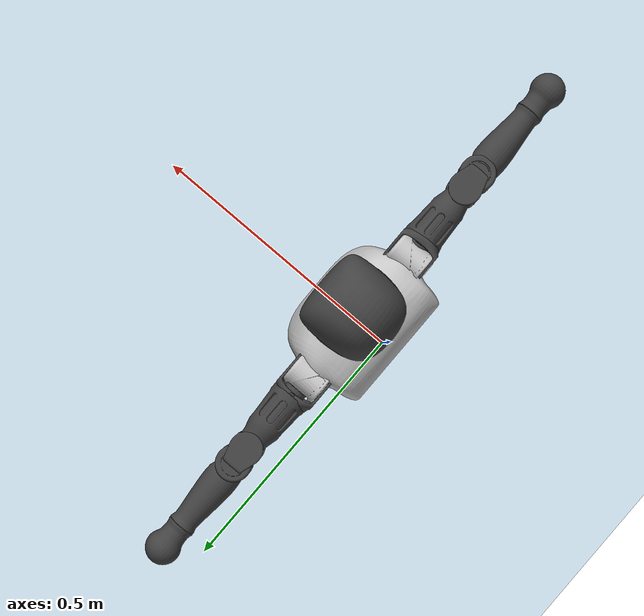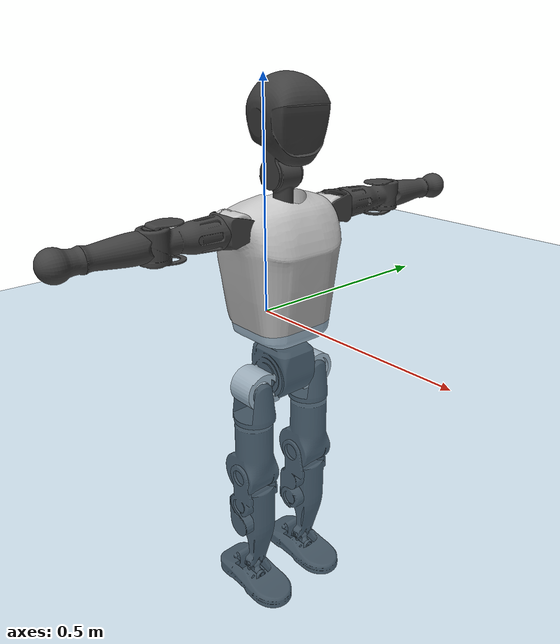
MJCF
<mujoco model="T1">
  <compiler angle="radian" assetdir="assets" balanceinertia="true" inertiafromgeom="false"/>

  <option timestep="0.005" density="1.2" viscosity="2e-05"/>

  <size nkey="1"/>

  <visual>
    <quality shadowsize="8192"/>
    <map shadowclip="0.5"/>
  </visual>

  <default>
    <default class="/">
      <joint armature="0.01" damping="0.01" frictionloss="0.1"/>
      <geom contype="0" conaffinity="0" group="1" solref="-1000 -80"/>
      <site size="0.01 0.005 0.005" group="5"/>
      <general forcelimited="true" biastype="affine" gainprm="25" biasprm="0 -25 -0.6"/>
      <default class="t1">
        <geom rgba="0.25 0.25 0.25 1"/>
        <default class="visual">
          <geom type="mesh" group="2"/>
        </default>
        <default class="collision">
          <geom group="3"/>
        </default>
        <default class="foot">
          <geom size="0.1115 0.05 0.015" type="box" condim="6" group="4" priority="1" solimp="0.015 1 0.015"/>
        </default>
        <default class="reward_collision_sphere">
          <geom group="5" rgba="1 0 0 1"/>
        </default>
      </default>
    </default>
  </default>

  <asset>
    <texture type="skybox" colorspace="auto" name="//unnamed_texture_0" builtin="gradient" rgb1="0.95 0.95 0.95" rgb2="0.95 0.95 0.95" width="100" height="600"/>
    <texture type="2d" colorspace="auto" name="texplane" builtin="checker" rgb1="0.345 0.575 0.748" rgb2="0.345 0.575 0.748" markrgb="1 1 1" width="512" height="512"/>
    <material name="MatPlane" class="/" texture="texplane" texuniform="true" texrepeat="2 2" specular="0.9"/>
    <mesh name="Trunk" class="/" file="Trunk.stl"/>
    <mesh name="H1" class="/" file="H1.stl"/>
    <mesh name="H2" class="/" file="H2.stl"/>
    <mesh name="AL1" class="/" file="AL1.stl"/>
    <mesh name="AL2" class="/" file="AL2.stl"/>
    <mesh name="AL3" class="/" file="AL3.stl"/>
    <mesh name="left_hand_link" class="/" file="left_hand_link.stl"/>
    <mesh name="AR1" class="/" file="AR1.stl"/>
    <mesh name="AR2" class="/" file="AR2.stl"/>
    <mesh name="AR3" class="/" file="AR3.stl"/>
    <mesh name="right_hand_link" class="/" file="right_hand_link.stl"/>
    <mesh name="Waist" class="/" file="Waist.stl"/>
    <mesh name="Hip_Pitch_Left" class="/" file="Hip_Pitch_Left.stl"/>
    <mesh name="Hip_Roll_Left" class="/" file="Hip_Roll_Left.stl"/>
    <mesh name="Hip_Yaw_Left" class="/" file="Hip_Yaw_Left.stl"/>
    <mesh name="Shank_Left" class="/" file="Shank_Left.stl"/>
    <mesh name="Ankle_Cross_Left" class="/" file="Ankle_Cross_Left.stl"/>
    <mesh name="left_foot_link" class="/" file="left_foot_link.stl"/>
    <mesh name="Hip_Pitch_Right" class="/" file="Hip_Pitch_Right.stl"/>
    <mesh name="Hip_Roll_Right" class="/" file="Hip_Roll_Right.stl"/>
    <mesh name="Hip_Yaw_Right" class="/" file="Hip_Yaw_Right.stl"/>
    <mesh name="Shank_Right" class="/" file="Shank_Right.stl"/>
    <mesh name="Ankle_Cross_Right" class="/" file="Ankle_Cross_Right.stl"/>
    <mesh name="right_foot_link" class="/" file="right_foot_link.stl"/>
  </asset>

  <worldbody>
    <geom name="floor" class="/" size="100 100 0.125" type="plane" group="0" material="MatPlane"/>
    <light name="toplight_shadow" class="/" pos="0 0 5" dir="0.0990148 0.0990148 -0.990148" type="directional" ambient="0.04 0.04 0.04" diffuse="0.55 0.55 0.55" specular="0.12 0.12 0.12"/>
    <light name="toplight_fill" class="/" pos="0 0 5" dir="0.0990148 0.0990148 -0.990148" type="directional" castshadow="false" ambient="0.04 0.04 0.04" diffuse="0.3 0.3 0.3" specular="0.08 0.08 0.08"/>
    <body name="trunk" childclass="t1" pos="8.99726e-05 -0.0027255 -0.0010376" quat="0.999999 -0.00118254 -5.70457e-05 0.000571022">
      <inertial pos="0.0548757 -0.00262313 0.109843" quat="0.999864 0.00434482 -0.00994009 -0.0123933" mass="9.90609" diaginertia="0.105162 0.021828 0.0699284"/>
      <joint name="//unnamed_joint_0" type="free" armature="0" damping="0" frictionloss="0"/>
      <geom name="//unnamed_geom_1" class="visual" rgba="0.76 0.76 0.76 1" mesh="Trunk"/>
      <geom name="//unnamed_geom_2" class="collision" size="0.071198 0.0949307 0.142396" pos="0.0614066 0 0.125371" type="box"/>
      <geom name="//unnamed_geom_3" class="reward_collision_sphere" size="0.10917" pos="0.0614066 0 0.104476"/>
      <geom name="//unnamed_geom_4" class="reward_collision_sphere" size="0.0142396" pos="0.0614066 0.0662762 0"/>
      <geom name="//unnamed_geom_5" class="reward_collision_sphere" size="0.0142396" pos="0.0614066 -0.0662762 0"/>
      <geom name="//unnamed_geom_6" class="reward_collision_sphere" size="0.0142396" pos="0.0614066 0.08343 0.188057"/>
      <geom name="//unnamed_geom_7" class="reward_collision_sphere" size="0.0142396" pos="0.0614066 -0.08343 0.188057"/>
      <site name="imu" pos="0.0135343 0.000390851 -0.0136739" size="0.00949307"/>
      <camera name="track" pos="0 -1.55944 0" quat="0.707107 0.707107 0 0" mode="trackcom"/>
      <camera name="ego_camera" pos="0.12486 0 0.438799" quat="-0.5 -0.5 0.5 0.5"/>
      <body name="H1" pos="0.060963 -0.000794395 0.252562" quat="1 0.0002638 4.19867e-05 0.000173363">
        <inertial pos="-0.00125062 -0.000498985 0.0599079" quat="0.763662 -0.0128976 0.00134761 0.645486" mass="0.379826" diaginertia="0.000264224 6.62188e-05 0.000186071"/>
        <joint name="AAHead_yaw" pos="0 0 0" axis="0.000165365 -0.000585583 1" stiffness="0.00851419" range="-1.51401 1.55272" armature="0.0101805" damping="0.00511257" frictionloss="0.103184"/>
        <geom name="//unnamed_geom_8" class="visual" mesh="H1"/>
        <body name="H2" pos="-0.00365716 -0.000329838 0.0634606" quat="0.999999 -0.000587606 -0.000724873 -0.000739559">
          <inertial pos="0.00967976 -0.00162978 0.10225" quat="0.989062 0.100348 -0.0816108 -0.0708985" mass="0.549644" diaginertia="0.00223473 0.000542428 0.00212951"/>
          <joint name="Head_pitch" pos="0 0 0" axis="-0.000553019 -0.999969 0.00789288" stiffness="0.000609278" range="-1.23483 0.333574" armature="0.0109179" damping="0" frictionloss="0.0922695"/>
          <geom name="//unnamed_geom_9" class="visual" mesh="H2"/>
          <geom name="//unnamed_geom_10" class="collision" size="0.0759446" pos="0.0102344 0 0.114923"/>
          <geom name="//unnamed_geom_11" class="reward_collision_sphere" size="0.0854377" pos="0.0204689 0 0.104476"/>
        </body>
      </body>
      <body name="AL1" pos="0.0604283 0.0820812 0.227422" quat="1 -0.000415075 0.000620569 -0.000409184">
        <inertial pos="-0.00393849 0.0339174 0.000865573" quat="0.503073 0.495537 -0.505078 0.496243" mass="0.436742" diaginertia="0.00148248 0.000354895 0.000342352"/>
        <joint name="Left_Shoulder_Pitch" pos="0 0 0" axis="0.00260307 0.999876 -0.0155326" range="-3.36074 1.24448" armature="0.0095576" damping="0.00079183" frictionloss="0.107974"/>
        <geom name="//unnamed_geom_12" class="visual" rgba="0.76 0.76 0.76 1" mesh="AL1"/>
        <body name="AL2" pos="-0.000775789 0.0401112 0.00164741" quat="1 0.000129896 1.32046e-05 0.000168336">
          <inertial pos="0.00172963 0.0312194 -0.00288441" quat="0.488873 0.511383 -0.48813 0.511097" mass="0.143401" diaginertia="0.000461971 0.000103671 0.000219697"/>
          <joint name="Left_Shoulder_Roll" pos="0 0 0" axis="-1 0.000774907 0.000170693" range="-1.52017 1.72571" armature="0.0101217" damping="0.000608879" frictionloss="0.0938497"/>
          <geom name="//unnamed_geom_13" class="visual" mesh="AL2"/>
          <body name="AL3" pos="0.00271049 0.0475752 0.00322943" quat="1 0.000103856 0.000248459 0.000214799">
            <inertial pos="0.00162987 0.065136 0.00156898" quat="0.700573 0.713489 0.00721641 -0.00887855" mass="0.828841" diaginertia="0.0143861 0.00353346 0.000724402"/>
            <joint name="Left_Elbow_Pitch" pos="0 0 0" axis="0.0137305 -0.999899 -0.00355844" range="-2.2934 2.22181" armature="0.00951959" damping="0.0108469" frictionloss="0.0986464"/>
            <geom name="//unnamed_geom_14" class="visual" mesh="AL3"/>
            <geom name="//unnamed_geom_15" class="collision" size="0.0284792 0.071198" pos="0 0.038986 0" quat="0.707105 0.707108 0 0" type="cylinder"/>
            <geom name="//unnamed_geom_16" class="reward_collision_sphere" size="0.0341751"/>
            <body name="left_hand_link" pos="-0.000366569 0.115259 -0.0020017" quat="1 0.000181948 -0.000163049 -0.000522496">
              <inertial pos="-0.00114164 0.0880614 -0.000364448" quat="0.706996 0.707203 -0.00270001 -0.00366917" mass="0.279897" diaginertia="0.0089513 0.0024151 0.000273964"/>
              <joint name="Left_Elbow_Yaw" pos="0 0 0" axis="-0.00169733 -0.000942736 0.999998" range="-2.43123 -0.0134664" armature="0.00970992" damping="0.0247648" frictionloss="0.0932735"/>
              <geom name="//unnamed_geom_17" class="visual" mesh="left_hand_link"/>
              <geom name="//unnamed_geom_18" class="collision" size="0.0284792 0.0830644" pos="0 0.101364 0" quat="0.707105 0.707108 0 0" type="cylinder"/>
              <geom name="//unnamed_geom_19" class="reward_collision_sphere" size="0.0474654"/>
              <geom name="//unnamed_geom_20" class="reward_collision_sphere" size="0.0332258" pos="0 0.0857692 0"/>
              <geom name="//unnamed_geom_21" class="reward_collision_sphere" size="0.0332258" pos="0 0.16764 0"/>
            </body>
          </body>
        </body>
      </body>
      <body name="AR1" pos="0.060497 -0.0835882 0.228675" quat="1 0.000456451 -0.00036244 0.00064469">
        <inertial pos="-0.00348814 -0.0354816 -0.000761896" quat="0.511542 0.497753 -0.492462 0.498043" mass="0.450147" diaginertia="0.00144379 0.000367265 0.000364717"/>
        <joint name="Right_Shoulder_Pitch" pos="0 0 0" axis="0.0111472 -0.999919 0.00606824" range="-1.22638 3.25417" armature="0.0104808" damping="0" frictionloss="0.0823804"/>
        <geom name="//unnamed_geom_22" class="visual" rgba="0.76 0.76 0.76 1" mesh="AR1"/>
        <body name="AR2" pos="0.000616091 -0.0326456 -0.00275053" quat="1 -1.08756e-05 0.000810148 0.000476731">
          <inertial pos="0.00122997 -0.0308511 -0.000908373" quat="0.509688 0.497274 -0.503554 0.489255" mass="0.134376" diaginertia="0.000452469 0.000101919 0.000218494"/>
          <joint name="Right_Shoulder_Roll" pos="0 0 0" axis="-0.999966 -0.00825709 1.26438e-05" stiffness="0.00120407" range="-1.69529 1.61185" armature="0.00944507" damping="0.0169427" frictionloss="0.0964383"/>
          <geom name="//unnamed_geom_23" class="visual" mesh="AR2"/>
          <body name="AR3" pos="0.00257024 -0.0454846 -0.000269181" quat="1 3.88248e-05 -2.62371e-07 -1.16985e-05">
            <inertial pos="-0.00143138 -0.0682933 -0.00208235" quat="0.702568 0.711582 0.000554409 -0.00700635" mass="0.876167" diaginertia="0.0145204 0.00367149 0.000797105"/>
            <joint name="Right_Elbow_Pitch" pos="0 0 0" axis="-0.00331384 0.999956 0.00876703" stiffness="0.0077476" range="-2.30817 2.21279" armature="0.00861532" damping="0.00710125" frictionloss="0.108271"/>
            <geom name="//unnamed_geom_24" class="visual" mesh="AR3"/>
            <geom name="//unnamed_geom_25" class="collision" size="0.0284792 0.071198" pos="0 -0.038986 0" quat="0.707105 0.707108 0 0" type="cylinder"/>
            <geom name="//unnamed_geom_26" class="reward_collision_sphere" size="0.0341751"/>
            <body name="right_hand_link" pos="0.00013053 -0.114247 0.00205528" quat="0.999999 0.00103158 0.000459828 -0.000320352">
              <inertial pos="-0.00149684 -0.0881763 0.00236723" quat="0.706064 0.708148 0.000568414 0.000818675" mass="0.270981" diaginertia="0.00895643 0.00223653 0.000258729"/>
              <joint name="Right_Elbow_Yaw" pos="0 0 0" axis="0.00887949 0.00540109 0.999946" range="0.0195102 2.49742" armature="0.0105149" damping="0.00279078" frictionloss="0.107538"/>
              <geom name="//unnamed_geom_27" class="visual" mesh="right_hand_link"/>
              <geom name="//unnamed_geom_28" class="collision" size="0.0284792 0.0830644" pos="0 -0.101364 0" quat="0.707105 0.707108 0 0" type="cylinder"/>
              <geom name="//unnamed_geom_29" class="reward_collision_sphere" size="0.0474654"/>
              <geom name="//unnamed_geom_30" class="reward_collision_sphere" size="0.0332258" pos="0 -0.0857692 0"/>
              <geom name="//unnamed_geom_31" class="reward_collision_sphere" size="0.0332258" pos="0 -0.16764 0"/>
            </body>
          </body>
        </body>
      </body>
      <body name="Waist" pos="0.0641648 -0.00378342 -0.119588" quat="1 -1.59062e-05 8.64138e-05 0.000266464">
        <inertial pos="0.00079826 -0.00146732 0.00764645" quat="0.982636 0.00238695 -0.185227 0.010615" mass="2.20178" diaginertia="0.00596329 0.00153846 0.00583601"/>
        <joint name="Waist" pos="0 0 0" axis="-0.000217447 -0.00850323 0.999964" range="-1.5693 1.53327" armature="0.00901128" damping="0.0228278" frictionloss="0.104627"/>
        <geom name="//unnamed_geom_32" class="visual" mesh="Waist"/>
        <body name="Hip_Pitch_Left" pos="0.000568904 0.0811834 -0.000485443" quat="0.999999 -0.000546144 0.000779633 0.000532212">
          <inertial pos="0.00133822 -0.00879714 -0.0179147" quat="0.975309 0.220182 0.0165469 0.00418683" mass="0.890173" diaginertia="0.00202521 0.000423034 0.00158784"/>
          <joint name="Left_Hip_Pitch" pos="0 0 0" axis="0.000885393 0.999996 0.00265049" range="-1.78805 1.5925" armature="0.0106952" damping="0.000486735" frictionloss="0.0982125"/>
          <geom name="//unnamed_geom_33" class="visual" rgba="0.76 0.76 0.76 1" mesh="Hip_Pitch_Left"/>
          <body name="Hip_Roll_Left" pos="-0.000615666 -0.000349628 -0.0193902" quat="1 0.000373252 8.85599e-05 4.39447e-06">
            <inertial pos="-0.00128078 -5.65763e-05 -0.0559999" quat="0.708513 -0.00129604 -0.0127195 0.705582" mass="0.324164" diaginertia="0.00197866 0.00042761 0.000634807"/>
            <joint name="Left_Hip_Roll" pos="0 0 0" axis="-0.999993 0.0025553 0.00262181" stiffness="0.0042303" range="-1.52012 0.208035" armature="0.00825435" damping="0.0147283" frictionloss="0.0938102"/>
            <geom name="//unnamed_geom_34" class="visual" mesh="Hip_Roll_Left"/>
            <geom name="//unnamed_geom_35" class="reward_collision_sphere" size="0.0522119"/>
            <body name="Hip_Yaw_Left" pos="0.0036778 -0.000906354 -0.0891896" quat="1 -0.000153262 -0.000289479 0.000140428">
              <inertial pos="-0.00828735 0.000520575 -0.0933576" quat="0.697342 -0.03402 -0.0376202 0.714942" mass="1.75972" diaginertia="0.0291372 0.00716798 0.00315419"/>
              <joint name="Left_Hip_Yaw" pos="0 0 0" axis="-0.00186386 0.00211291 -0.999996" range="-1.06342 1.01586" armature="0.00955182" damping="0.0218027" frictionloss="0.0903785"/>
              <geom name="//unnamed_geom_36" class="visual" mesh="Hip_Yaw_Left"/>
              <geom name="//unnamed_geom_37" class="collision" size="0.0474654 0.0759446" type="cylinder"/>
              <body name="Shank_Left" pos="-0.0148636 -0.00211196 -0.142781" quat="1 0.000334544 -0.000197122 1.90504e-05">
                <inertial pos="-0.0080242 -0.00189617 -0.128873" quat="0.997868 0.00403889 -0.0314151 0.0570686" mass="1.58586" diaginertia="0.0403328 0.0103686 0.00234805"/>
                <joint name="Left_Knee_Pitch" pos="0 0 0" axis="-0.00311756 0.999995 -0.000952421" stiffness="0.00374521" range="0.0363195 2.28414" armature="0.0103111" damping="0" frictionloss="0.0908117"/>
                <geom name="//unnamed_geom_38" class="visual" mesh="Shank_Left"/>
                <geom name="//unnamed_geom_39" class="collision" size="0.0474654 0.071198" pos="0 0 -0.125371" type="cylinder"/>
                <geom name="//unnamed_geom_40" class="reward_collision_sphere" size="0.061705"/>
                <body name="Ankle_Cross_Left" pos="0.000818032 0.00213194 -0.295372" quat="1 -0.000767489 0.000229662 0.000353789">
                  <inertial pos="-0.00634018 -0.000472788 -0.00774505" quat="0.440328 0.561722 0.545433 0.439412" mass="0.0628814" diaginertia="3.29694e-05 7.66749e-06 1.47508e-05"/>
                  <joint name="Left_Ankle_Pitch" pos="0 0 0" axis="0.0116997 0.999925 0.00364303" range="-0.871 0.380812" armature="0.00849423" damping="0.0135138" frictionloss="0.0903409"/>
                  <geom name="//unnamed_geom_41" class="visual" mesh="Ankle_Cross_Left"/>
                  <body name="left_foot_link" pos="-0.0024215 -0.00143033 -0.0143164" quat="1 -3.17067e-06 3.39168e-06 -1.78139e-05">
                    <inertial pos="0.0015434 0.00136465 -0.00898497" quat="0.000321536 0.621212 0.0046484 0.783628" mass="0.572761" diaginertia="0.00297846 0.000679843 0.00262045"/>
                    <joint name="Left_Ankle_Roll" pos="0 0 0" axis="-0.999985 -0.00410629 -0.00375923" stiffness="0.000658817" range="-0.438157 0.436241" armature="0.00852072" damping="0" frictionloss="0.0955455"/>
                    <geom name="//unnamed_geom_42" class="visual" mesh="left_foot_link"/>
                    <geom name="left_foot" class="foot" size="0.0769918 0.0439326 0.0152933" pos="0.0102344 0 -0.0156714"/>
                    <geom name="//unnamed_geom_44" class="reward_collision_sphere" size="0.049364" pos="0.0102344 0 -0.0156714"/>
                    <geom name="//unnamed_geom_45" class="reward_collision_sphere" size="0.0284792" pos="0.0972271 -0.0179336 -0.0156714"/>
                    <geom name="//unnamed_geom_46" class="reward_collision_sphere" size="0.0284792" pos="-0.071641 -0.0179336 -0.0156714"/>
                    <site name="left_foot" class="foot" pos="0.0102344 0 -0.0156714" size="0.00949307"/>
                  </body>
                </body>
              </body>
            </body>
          </body>
        </body>
        <body name="Hip_Pitch_Right" pos="-0.00269926 -0.0804696 -0.00227331" quat="1 0.000285789 0.00016486 -7.6554e-06">
          <inertial pos="0.000495037 0.00588976 -0.0181944" quat="0.970829 -0.238536 0.0241641 -0.00273839" mass="0.888447" diaginertia="0.00199341 0.000409051 0.00149281"/>
          <joint name="Right_Hip_Pitch" pos="0 0 0" axis="-0.00175475 -0.999981 0.00583223" range="-1.62633 1.81284" armature="0.00825116" damping="0.00201747" frictionloss="0.0997936"/>
          <geom name="//unnamed_geom_47" class="visual" rgba="0.76 0.76 0.76 1" mesh="Hip_Pitch_Right"/>
          <body name="Hip_Roll_Right" pos="1.21196e-05 -0.00326833 -0.0231735" quat="1 -1.09478e-08 -7.48546e-05 -0.000157778">
            <inertial pos="-0.000396557 0.000637306 -0.0570717" quat="0.701471 0.00317783 -0.00259702 0.712686" mass="0.341462" diaginertia="0.00203586 0.000445763 0.000651376"/>
            <joint name="Right_Hip_Roll" pos="0 0 0" axis="-1 0.00046446 0.000619032" range="-0.18421 1.55819" armature="0.0106903" damping="0.00504062" frictionloss="0.0917862"/>
            <geom name="//unnamed_geom_48" class="visual" mesh="Hip_Roll_Right"/>
            <geom name="//unnamed_geom_49" class="reward_collision_sphere" size="0.0522119"/>
            <body name="Hip_Yaw_Right" pos="0.000671789 -0.00365252 -0.0868299" quat="1 -0.000569 0.000160217 0.000264323">
              <inertial pos="-0.00440442 -0.00271827 -0.0923965" quat="0.714331 -0.0323407 -0.0331137 0.698276" mass="1.89481" diaginertia="0.0298956 0.00734415 0.00321779"/>
              <joint name="Right_Hip_Yaw" pos="0 0 0" axis="-0.00067777 -0.00239887 -0.999997" range="-1.01767 0.955995" armature="0.00936787" damping="0.0206644" frictionloss="0.101669"/>
              <geom name="//unnamed_geom_50" class="visual" mesh="Hip_Yaw_Right"/>
              <geom name="//unnamed_geom_51" class="collision" size="0.0474654 0.0759446" type="cylinder"/>
              <body name="Shank_Right" pos="-0.0102954 0.00067718 -0.139516" quat="1 0.000647245 0.000522145 0.000225663">
                <inertial pos="-0.00627691 0.00271034 -0.127171" quat="0.99867 -0.00169836 -0.0288876 -0.042662" mass="1.48086" diaginertia="0.0379997 0.0101803 0.00244823"/>
                <joint name="Right_Knee_Pitch" pos="0 0 0" axis="0.00435133 -0.999968 -0.00663863" range="-2.29437 -0.0520051" armature="0.00958714" damping="0.0204937" frictionloss="0.0847703"/>
                <geom name="//unnamed_geom_52" class="visual" mesh="Shank_Right"/>
                <geom name="//unnamed_geom_53" class="collision" size="0.0474654 0.071198" pos="0 0 -0.125371" type="cylinder"/>
                <geom name="//unnamed_geom_54" class="reward_collision_sphere" size="0.061705"/>
                <body name="Ankle_Cross_Right" pos="0.0035255 -0.00263911 -0.291221" quat="1 2.5792e-05 8.13595e-05 -5.34391e-06">
                  <inertial pos="-0.00591205 -0.0013894 -0.00590591" quat="0.44147 0.553804 0.541582 0.452874" mass="0.0615542" diaginertia="3.29532e-05 7.38641e-06 1.36952e-05"/>
                  <joint name="Right_Ankle_Pitch" pos="0 0 0" axis="-0.0017009 -0.999956 -0.0092192" range="-0.393718 0.851206" armature="0.00902581" damping="0.00892356" frictionloss="0.0970054"/>
                  <geom name="//unnamed_geom_55" class="visual" mesh="Ankle_Cross_Right"/>
                  <body name="right_foot_link" pos="-0.000412716 -0.00228608 -0.0148881" quat="1 0.000173693 -0.000119732 0.000162533">
                    <inertial pos="0.0010225 0.00182913 -0.0117915" quat="-0.00297305 0.620555 -0.00357616 0.784149" mass="0.57274" diaginertia="0.00299206 0.000685987 0.00262873"/>
                    <joint name="Right_Ankle_Roll" pos="0 0 0" axis="-0.999938 0.00494631 -0.0099415" range="-0.436734 0.438429" armature="0.0105609" damping="0.0117226" frictionloss="0.0820073"/>
                    <geom name="//unnamed_geom_56" class="visual" mesh="right_foot_link"/>
                    <geom name="right_foot" class="foot" size="0.0666251 0.0420817 0.0146693" pos="0.0102344 0 -0.0156714"/>
                    <geom name="//unnamed_geom_58" class="reward_collision_sphere" size="0.0379723"/>
                    <geom name="//unnamed_geom_59" class="reward_collision_sphere" size="0.0284792" pos="0.0102344 0 -0.0156714"/>
                    <geom name="//unnamed_geom_60" class="reward_collision_sphere" size="0.0284792" pos="0.0972271 0.0179336 -0.0156714"/>
                    <geom name="//unnamed_geom_61" class="reward_collision_sphere" size="0.0284792" pos="-0.071641 0.0179336 -0.0156714"/>
                    <site name="right_foot" class="foot" pos="0.0102344 0 -0.0156714" size="0.00949307"/>
                  </body>
                </body>
              </body>
            </body>
          </body>
        </body>
      </body>
    </body>
  </worldbody>

  <contact>
    <pair class="/" geom1="floor" geom2="left_foot" name="//unnamed_contact_0"/>
    <pair class="/" geom1="floor" geom2="right_foot" name="//unnamed_contact_1"/>
  </contact>

  <actuator>
    <general name="AAHead_yaw" class="/" joint="AAHead_yaw" forcerange="-5.95974 5.95974" gainprm="22.4062" biasprm="0 -22.4062 -0.519516"/>
    <general name="Head_pitch" class="/" joint="Head_pitch" forcerange="-7.33258 7.33258" gainprm="22.4062" biasprm="0 -22.4062 -0.519516"/>
    <general name="Left_Shoulder_Pitch" class="/" joint="Left_Shoulder_Pitch" forcerange="-16.9992 16.9992" gainprm="22.4062" biasprm="0 -22.4062 -0.519516"/>
    <general name="Left_Shoulder_Roll" class="/" joint="Left_Shoulder_Roll" forcerange="-18.3209 18.3209" gainprm="22.4062" biasprm="0 -22.4062 -0.519516"/>
    <general name="Left_Elbow_Pitch" class="/" joint="Left_Elbow_Pitch" forcerange="-17.6947 17.6947" gainprm="22.4062" biasprm="0 -22.4062 -0.519516"/>
    <general name="Left_Elbow_Yaw" class="/" joint="Left_Elbow_Yaw" forcerange="-16.6403 16.6403" gainprm="22.4062" biasprm="0 -22.4062 -0.519516"/>
    <general name="Right_Shoulder_Pitch" class="/" joint="Right_Shoulder_Pitch" forcerange="-17.1388 17.1388" gainprm="22.4062" biasprm="0 -22.4062 -0.519516"/>
    <general name="Right_Shoulder_Roll" class="/" joint="Right_Shoulder_Roll" forcerange="-15.8692 15.8692" gainprm="22.4062" biasprm="0 -22.4062 -0.519516"/>
    <general name="Right_Elbow_Pitch" class="/" joint="Right_Elbow_Pitch" forcerange="-17.7 17.7" gainprm="22.4062" biasprm="0 -22.4062 -0.519516"/>
    <general name="Right_Elbow_Yaw" class="/" joint="Right_Elbow_Yaw" forcerange="-16.4963 16.4963" gainprm="22.4062" biasprm="0 -22.4062 -0.519516"/>
    <general name="Waist" class="/" joint="Waist" forcerange="-26.5727 26.5727" gainprm="22.4062" biasprm="0 -22.4062 -0.519516"/>
    <general name="Left_Hip_Pitch" class="/" joint="Left_Hip_Pitch" forcerange="-39.9687 39.9687" gainprm="22.4062" biasprm="0 -22.4062 -0.519516"/>
    <general name="Left_Hip_Roll" class="/" joint="Left_Hip_Roll" forcerange="-29.11 29.11" gainprm="22.4062" biasprm="0 -22.4062 -0.519516"/>
    <general name="Left_Hip_Yaw" class="/" joint="Left_Hip_Yaw" forcerange="-28.1286 28.1286" gainprm="22.4062" biasprm="0 -22.4062 -0.519516"/>
    <general name="Left_Knee_Pitch" class="/" joint="Left_Knee_Pitch" forcerange="-51.8779 51.8779" gainprm="22.4062" biasprm="0 -22.4062 -0.519516"/>
    <general name="Left_Ankle_Pitch" class="/" joint="Left_Ankle_Pitch" forcerange="-19.4906 19.4906" gainprm="22.4062" biasprm="0 -22.4062 -0.519516"/>
    <general name="Left_Ankle_Roll" class="/" joint="Left_Ankle_Roll" forcerange="-14.1627 14.1627" gainprm="22.4062" biasprm="0 -22.4062 -0.519516"/>
    <general name="Right_Hip_Pitch" class="/" joint="Right_Hip_Pitch" forcerange="-43.1716 43.1716" gainprm="22.4062" biasprm="0 -22.4062 -0.519516"/>
    <general name="Right_Hip_Roll" class="/" joint="Right_Hip_Roll" forcerange="-25.9897 25.9897" gainprm="22.4062" biasprm="0 -22.4062 -0.519516"/>
    <general name="Right_Hip_Yaw" class="/" joint="Right_Hip_Yaw" forcerange="-29.9994 29.9994" gainprm="22.4062" biasprm="0 -22.4062 -0.519516"/>
    <general name="Right_Knee_Pitch" class="/" joint="Right_Knee_Pitch" forcerange="-59.2793 59.2793" gainprm="22.4062" biasprm="0 -22.4062 -0.519516"/>
    <general name="Right_Ankle_Pitch" class="/" joint="Right_Ankle_Pitch" forcerange="-18.6404 18.6404" gainprm="22.4062" biasprm="0 -22.4062 -0.519516"/>
    <general name="Right_Ankle_Roll" class="/" joint="Right_Ankle_Roll" forcerange="-13.9879 13.9879" gainprm="22.4062" biasprm="0 -22.4062 -0.519516"/>
  </actuator>

  <sensor>
    <gyro site="imu" name="imu_angular_velocity"/>
    <velocimeter site="imu" name="imu_linear_velocity"/>
    <framelinvel objtype="site" objname="left_foot" name="left_foot_global_linear_velocity"/>
    <framelinvel objtype="site" objname="right_foot" name="right_foot_global_linear_velocity"/>
  </sensor>

  <keyframe>
    <key name="home" qpos="0 0 0.6385 1 0 0 0 0 0 0 1.4 0 -0.4 0 -1.4 0 0.4 0 -0.4 0 0 0.8 -0.4 0 0.4 0 0 -0.8 0.4 0"/>
  </keyframe>
</mujoco>
